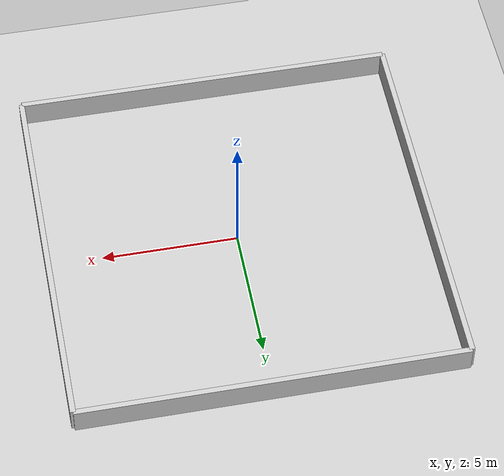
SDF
<sdf version="1.8">
 <world name="demo">
  <plugin filename="ignition-gazebo-physics-system" name="ignition::gazebo::systems::Physics"/>
  <plugin filename="ignition-gazebo-sensors-system" name="ignition::gazebo::systems::Sensors">
   <render_engine>ogre2</render_engine>
  </plugin>
  <plugin filename="ignition-gazebo-scene-broadcaster-system" name="ignition::gazebo::systems::SceneBroadcaster"/>
  <plugin filename="ignition-gazebo-user-commands-system" name="ignition::gazebo::systems::UserCommands"/>
  <light name="sun" type="directional">
   <pose>0 0 10 0 0 0</pose>
   <diffuse>0.8 0.8 0.8 1</diffuse>
   <specular>0.2 0.2 0.2 1</specular>
   <attenuation>
    <range>1000</range>
    <constant>0.9</constant>
    <linear>0.01</linear>
    <quadratic>0.001</quadratic>
   </attenuation>
   <direction>-0.5 0.1 -0.9</direction>
  </light>
  <model name="ground_plane">
   <static>true</static>
   <link name="link">
    <collision name="collision">
     <geometry><plane><normal>0 0 1</normal><size>100 100</size></plane></geometry>
    </collision>
    <visual name="visual">
     <geometry><plane><normal>0 0 1</normal><size>100 100</size></plane></geometry>
     <material>
      <ambient>0.8 0.8 0.8 1</ambient>
      <diffuse>0.8 0.8 0.8 1</diffuse>
      <specular>0.8 0.8 0.8 1</specular>
     </material>
    </visual>
   </link>
  </model>
  <model name="wall_north">
   <static>true</static>
   <pose>7 0 0.5 0 0 0</pose>
   <link name="link">
    <collision name="collision"><geometry><box><size>0.2 14 1</size></box></geometry></collision>
    <visual name="visual">
     <geometry><box><size>0.2 14 1</size></box></geometry>
     <material>
      <ambient>0.8 0.8 0.8 1</ambient>
      <diffuse>0.8 0.8 0.8 1</diffuse>
      <specular>0.8 0.8 0.8 1</specular>
     </material>
    </visual>
   </link>
  </model>
  <model name="wall_south">
   <static>true</static>
   <pose>-7 0 0.5 0 0 0</pose>
   <link name="link">
    <collision name="collision"><geometry><box><size>0.2 14 1</size></box></geometry></collision>
    <visual name="visual">
     <geometry><box><size>0.2 14 1</size></box></geometry>
     <material>
      <ambient>0.8 0.8 0.8 1</ambient>
      <diffuse>0.8 0.8 0.8 1</diffuse>
      <specular>0.8 0.8 0.8 1</specular>
     </material>
    </visual>
   </link>
  </model>
  <model name="wall_west">
   <static>true</static>
   <pose>0 7 0.5 0 0 0</pose>
   <link name="link">
    <collision name="collision"><geometry><box><size>14 0.2 1</size></box></geometry></collision>
    <visual name="visual">
     <geometry><box><size>14 0.2 1</size></box></geometry>
     <material>
      <ambient>0.8 0.8 0.8 1</ambient>
      <diffuse>0.8 0.8 0.8 1</diffuse>
      <specular>0.8 0.8 0.8 1</specular>
     </material>
    </visual>
   </link>
  </model>
  <model name="wall_east">
   <static>true</static>
   <pose>0 -7 0.5 0 0 0</pose>
   <link name="link">
    <collision name="collision"><geometry><box><size>14 0.2 1</size></box></geometry></collision>
    <visual name="visual">
     <geometry><box><size>14 0.2 1</size></box></geometry>
     <material>
      <ambient>0.8 0.8 0.8 1</ambient>
      <diffuse>0.8 0.8 0.8 1</diffuse>
      <specular>0.8 0.8 0.8 1</specular>
     </material>
    </visual>
   </link>
  </model>
 </world>
</sdf>
